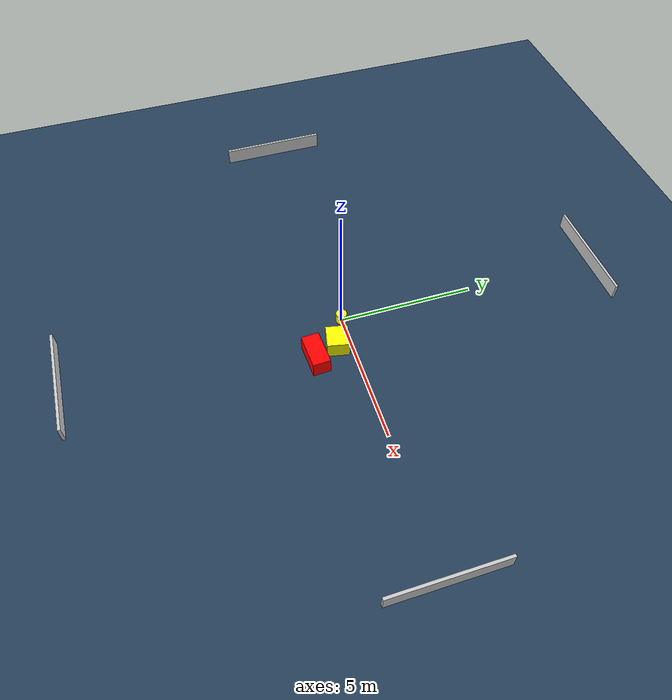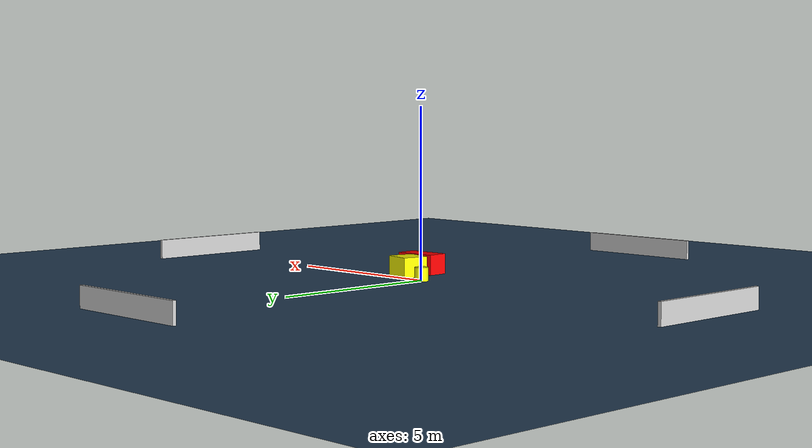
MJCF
<?xml version="1.0" ?>
<mujoco model="generated_environment">
  <option timestep="0.01" integrator="RK4" cone="elliptic"/>
  <default>
    <geom density="1"/>
  </default>
  <asset>
    <texture builtin="gradient" height="3072" name="skybox" rgb1="0.3 0.5 0.7" rgb2="0 0 0" type="skybox" width="512"/>
    <texture builtin="checker" height="300" name="groundplane" rgb1="0.2 0.3 0.4" rgb2="0.1 0.2 0.3" type="2d" width="300"/>
    <material name="groundplane" reflectance="0.2" texrepeat="5 5" texture="groundplane"/>
  </asset>
  <worldbody>
    <light dir="0 0 -1" directional="true" pos="0 0 1.5"/>
    <geom condim="3" friction="0.5 0.005 0.001" material="groundplane" name="floor" pos="0 0 0" size="0 0 0.05" type="plane"/>
    <body name="walls">
      <geom name="wall_1" condim="4" pos="-10.0 0.0 0.3" rgba="0.800000011920929 0.800000011920929 0.800000011920929 1.0" size="0.05 2.0 0.3" type="box"/>
      <geom name="wall_2" condim="4" pos="10.0 0.0 0.3" rgba="0.800000011920929 0.800000011920929 0.800000011920929 1.0" size="0.05 2.0 0.3" type="box"/>
      <geom name="wall_3" condim="4" pos="0.0 -10.0 0.3" rgba="0.800000011920929 0.800000011920929 0.800000011920929 1.0" size="2.0 0.05 0.3" type="box"/>
      <geom name="wall_4" condim="4" pos="0.0 10.0 0.3" rgba="0.800000011920929 0.800000011920929 0.800000011920929 1.0" size="2.0 0.05 0.3" type="box"/>
    </body>
    <body name="robot">
      <joint name="joint_x" type="slide" pos="0 0 0" axis="1 0 0"/>
      <joint name="joint_y" type="slide" pos="0 0 0" axis="0 1 0"/>
      <geom name="robot" type="cylinder" pos="0.0 0.0 0.2" size="0.2 0.2 0.0" mass="5.0" friction="1.0 0.005 0.0001" condim="4" rgba="1.0 1.0 0.0 1.0"/>
    </body>
    <body name="obstacle_1_movable">
      <geom name="obstacle_1_movable" condim="4" pos="1.0572275475541657 -0.4824309812586531 0.3" euler="0 0 348.099755373333" friction="0.0 0.005 0.001" rgba="1.0 1.0 0.0 1.0" size="0.4229305756846014 0.39468366279715955 0.3" type="box" mass="0.1"/>
      <joint type="free"/>
    </body>
    <body name="obstacle_2_static">
      <geom name="obstacle_2_static" condim="4" pos="1.3842908270310503 -1.3658661165436068 0.3" euler="0 0 273.1776359688227" friction="0.0 0.005 0.001" rgba="1.0 0.0 0.0 1.0" size="0.3205604471341537 0.6415413402060237 0.3" type="box"/>
    </body>
  </worldbody>
  <actuator>
    <motor name="actuator_x" joint="joint_x" gear="1" ctrlrange="-1 1"/>
    <motor name="actuator_y" joint="joint_y" gear="1" ctrlrange="-1 1"/>
  </actuator>
</mujoco>
